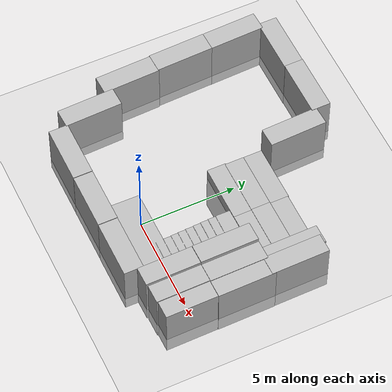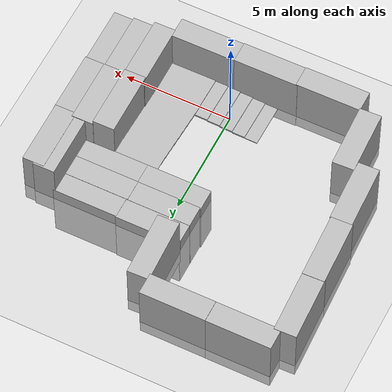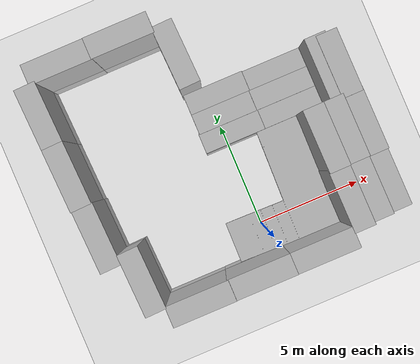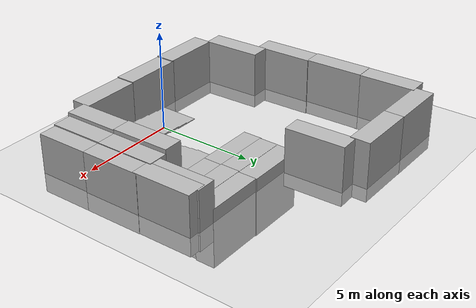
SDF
<sdf version="1.6">
 <world name="default">
  <light name="sun" type="directional">
   <pose>0 0 10 0 -0 0</pose>
   <diffuse>0.8 0.8 0.8 1</diffuse>
   <specular>0.2 0.2 0.2 1</specular>
   <attenuation>
    <range>1000</range>
    <constant>0.9</constant>
    <linear>0.01</linear>
    <quadratic>0.001</quadratic>
   </attenuation>
   <direction>-0.5 0.1 -0.9</direction>
  </light>
  <model name="ground_plane">
   <static>1</static>
   <link name="link">
    <collision name="collision">
     <geometry><plane><normal>0 0 1</normal><size>100 100</size></plane></geometry>
     <surface><friction><ode><mu>200</mu><mu2>100</mu2></ode></friction></surface>
    </collision>
    <visual name="visual">
     <cast_shadows>0</cast_shadows>
     <geometry><plane><normal>0 0 1</normal><size>100 100</size></plane></geometry>
     <material>
      <script><uri>file://media/materials/scripts/gazebo.material</uri><name>Gazebo/Grey</name></script>
     </material>
    </visual>
   </link>
  </model>
  <gravity>0 0 -9.8</gravity>
  <magnetic_field>6e-06 2.3e-05 -4.2e-05</magnetic_field>
  <atmosphere type="adiabatic"/>
  <physics name="default_physics" default="0" type="ode">
   <max_step_size>0.001</max_step_size>
   <real_time_factor>1</real_time_factor>
   <real_time_update_rate>1000</real_time_update_rate>
  </physics>
  <scene><ambient>0.4 0.4 0.4 1</ambient><background>0.7 0.7 0.7 1</background><shadows>1</shadows></scene>
  <spherical_coordinates>
   <surface_model>EARTH_WGS84</surface_model>
   <latitude_deg>0</latitude_deg>
   <longitude_deg>0</longitude_deg>
   <elevation>0</elevation>
   <heading_deg>0</heading_deg>
  </spherical_coordinates>
  <light name="user_directional_light_0" type="directional">
   <pose>2.12541 2.7382 1 0 -0 0</pose>
   <diffuse>0.5 0.5 0.5 1</diffuse>
   <specular>0.1 0.1 0.1 1</specular>
   <direction>0.1 0.1 -0.9</direction>
   <attenuation>
    <range>20</range>
    <constant>0.5</constant>
    <linear>0.01</linear>
    <quadratic>0.001</quadratic>
   </attenuation>
  </light>
  <light name="user_directional_light_1" type="directional">
   <pose>4.0333 2.55737 1 0 -0 0</pose>
   <diffuse>0.5 0.5 0.5 1</diffuse>
   <specular>0.1 0.1 0.1 1</specular>
   <direction>0.1 0.1 -0.9</direction>
   <attenuation>
    <range>20</range>
    <constant>0.5</constant>
    <linear>0.01</linear>
    <quadratic>0.001</quadratic>
   </attenuation>
  </light>
  <light name="user_directional_light_2" type="directional">
   <pose>5.69731 2.58598 1 0 -0 0</pose>
   <diffuse>0.5 0.5 0.5 1</diffuse>
   <specular>0.1 0.1 0.1 1</specular>
   <direction>0.1 0.1 -0.9</direction>
   <attenuation>
    <range>20</range>
    <constant>0.5</constant>
    <linear>0.01</linear>
    <quadratic>0.001</quadratic>
   </attenuation>
  </light>
  <model name="brick_box_3x1x3">
   <static>1</static>
   <link name="chassis">
    <pose>0 0 1.5 0 -0 0</pose>
    <collision name="collision"><geometry><box><size>3 1 3</size></box></geometry></collision>
    <visual name="visual">
     <geometry><mesh><uri>model://brick_box_3x1x3/meshes/simple_box.dae</uri><scale>3 1 3</scale></mesh></geometry>
     <material>
      <script>
       <uri>model://brick_box_3x1x3/materials/scripts</uri>
       <uri>model://brick_box_3x1x3/materials/textures</uri>
       <name>BrickBox/Diffuse</name>
      </script>
     </material>
    </visual>
   </link>
   <pose>2.00888 -1.91352 -0.775904 0 -0 0</pose>
  </model>
  <model name="brick_box_3x1x3_clone">
   <static>1</static>
   <link name="chassis">
    <pose>0 0 1.5 0 -0 0</pose>
    <collision name="collision"><geometry><box><size>3 1 3</size></box></geometry></collision>
    <visual name="visual">
     <geometry><mesh><uri>model://brick_box_3x1x3/meshes/simple_box.dae</uri><scale>3 1 3</scale></mesh></geometry>
     <material>
      <script>
       <uri>model://brick_box_3x1x3/materials/scripts</uri>
       <uri>model://brick_box_3x1x3/materials/textures</uri>
       <name>BrickBox/Diffuse</name>
      </script>
     </material>
    </visual>
   </link>
   <pose>-0.981088 -1.91253 -0.731804 0 -0 0</pose>
  </model>
  <model name="brick_box_3x1x3_clone_clone">
   <static>1</static>
   <link name="chassis">
    <pose>0 0 1.5 0 -0 0</pose>
    <collision name="collision"><geometry><box><size>3 1 3</size></box></geometry></collision>
    <visual name="visual">
     <geometry><mesh><uri>model://brick_box_3x1x3/meshes/simple_box.dae</uri><scale>3 1 3</scale></mesh></geometry>
     <material>
      <script>
       <uri>model://brick_box_3x1x3/materials/scripts</uri>
       <uri>model://brick_box_3x1x3/materials/textures</uri>
       <name>BrickBox/Diffuse</name>
      </script>
     </material>
    </visual>
   </link>
   <pose>3.37053 4.56885 -2.3589 0 -0 0</pose>
  </model>
  <model name="brick_box_3x1x3_clone_clone_clone">
   <static>1</static>
   <link name="chassis">
    <pose>0 0 1.5 0 -0 0</pose>
    <collision name="collision"><geometry><box><size>3 1 3</size></box></geometry></collision>
    <visual name="visual">
     <geometry><mesh><uri>model://brick_box_3x1x3/meshes/simple_box.dae</uri><scale>3 1 3</scale></mesh></geometry>
     <material>
      <script>
       <uri>model://brick_box_3x1x3/materials/scripts</uri>
       <uri>model://brick_box_3x1x3/materials/textures</uri>
       <name>BrickBox/Diffuse</name>
      </script>
     </material>
    </visual>
   </link>
   <pose>3.96684 2.58857 -0.719502 0 0 -1.56214</pose>
  </model>
  <model name="brick_box_3x1x3_clone_clone_clone_clone">
   <static>1</static>
   <link name="chassis">
    <pose>0 0 1.5 0 -0 0</pose>
    <collision name="collision"><geometry><box><size>3 1 3</size></box></geometry></collision>
    <visual name="visual">
     <geometry><mesh><uri>model://brick_box_3x1x3/meshes/simple_box.dae</uri><scale>3 1 3</scale></mesh></geometry>
     <material>
      <script>
       <uri>model://brick_box_3x1x3/materials/scripts</uri>
       <uri>model://brick_box_3x1x3/materials/textures</uri>
       <name>BrickBox/Diffuse</name>
      </script>
     </material>
    </visual>
   </link>
   <pose>3.97401 -0.239448 -0.773344 0 0 -1.56214</pose>
  </model>
  <model name="brick_box_3x1x3_clone_clone_clone_0">
   <static>1</static>
   <link name="chassis">
    <pose>0 0 1.5 0 -0 0</pose>
    <collision name="collision"><geometry><box><size>3 1 3</size></box></geometry></collision>
    <visual name="visual">
     <geometry><mesh><uri>model://brick_box_3x1x3/meshes/simple_box.dae</uri><scale>3 1 3</scale></mesh></geometry>
     <material>
      <script>
       <uri>model://brick_box_3x1x3/materials/scripts</uri>
       <uri>model://brick_box_3x1x3/materials/textures</uri>
       <name>BrickBox/Diffuse</name>
      </script>
     </material>
    </visual>
   </link>
   <pose>0.378678 4.56616 -2.35881 0 -0 0</pose>
  </model>
  <model name="brick_box_3x1x3_clone_clone_0">
   <static>1</static>
   <link name="chassis">
    <pose>0 0 1.5 0 -0 0</pose>
    <collision name="collision"><geometry><box><size>3 1 3</size></box></geometry></collision>
    <visual name="visual">
     <geometry><mesh><uri>model://brick_box_3x1x3/meshes/simple_box.dae</uri><scale>3 1 3</scale></mesh></geometry>
     <material>
      <script>
       <uri>model://brick_box_3x1x3/materials/scripts</uri>
       <uri>model://brick_box_3x1x3/materials/textures</uri>
       <name>BrickBox/Diffuse</name>
      </script>
     </material>
    </visual>
   </link>
   <pose>-5.9124 -0.025872 -0.6847 0 0 -1.5354</pose>
  </model>
  <model name="brick_box_3x1x3_clone_clone_1">
   <static>1</static>
   <link name="chassis">
    <pose>0 0 1.5 0 -0 0</pose>
    <collision name="collision"><geometry><box><size>3 1 3</size></box></geometry></collision>
    <visual name="visual">
     <geometry><mesh><uri>model://brick_box_3x1x3/meshes/simple_box.dae</uri><scale>3 1 3</scale></mesh></geometry>
     <material>
      <script>
       <uri>model://brick_box_3x1x3/materials/scripts</uri>
       <uri>model://brick_box_3x1x3/materials/textures</uri>
       <name>BrickBox/Diffuse</name>
      </script>
     </material>
    </visual>
   </link>
   <pose>-3.90727 -1.91701 -0.690231 0 -0 0</pose>
  </model>
  <model name="brick_box_3x1x3_clone_clone_0_clone">
   <static>1</static>
   <link name="chassis">
    <pose>0 0 1.5 0 -0 0</pose>
    <collision name="collision"><geometry><box><size>3 1 3</size></box></geometry></collision>
    <visual name="visual">
     <geometry><mesh><uri>model://brick_box_3x1x3/meshes/simple_box.dae</uri><scale>3 1 3</scale></mesh></geometry>
     <material>
      <script>
       <uri>model://brick_box_3x1x3/materials/scripts</uri>
       <uri>model://brick_box_3x1x3/materials/textures</uri>
       <name>BrickBox/Diffuse</name>
      </script>
     </material>
    </visual>
   </link>
   <pose>-6.98089 2.4859 -0.699066 0 0 -1.5354</pose>
  </model>
  <model name="brick_box_3x1x3_clone_clone_0_clone_clone">
   <static>1</static>
   <link name="chassis">
    <pose>0 0 1.5 0 -0 0</pose>
    <collision name="collision"><geometry><box><size>3 1 3</size></box></geometry></collision>
    <visual name="visual">
     <geometry><mesh><uri>model://brick_box_3x1x3/meshes/simple_box.dae</uri><scale>3 1 3</scale></mesh></geometry>
     <material>
      <script>
       <uri>model://brick_box_3x1x3/materials/scripts</uri>
       <uri>model://brick_box_3x1x3/materials/textures</uri>
       <name>BrickBox/Diffuse</name>
      </script>
     </material>
    </visual>
   </link>
   <pose>-7.13044 5.45078 -0.696087 0 0 -1.5354</pose>
  </model>
  <model name="brick_box_3x1x3_clone_clone_0_clone_clone_clone_clone">
   <static>1</static>
   <link name="chassis">
    <pose>0 0 1.5 0 -0 0</pose>
    <collision name="collision"><geometry><box><size>3 1 3</size></box></geometry></collision>
    <visual name="visual">
     <geometry><mesh><uri>model://brick_box_3x1x3/meshes/simple_box.dae</uri><scale>3 1 3</scale></mesh></geometry>
     <material>
      <script>
       <uri>model://brick_box_3x1x3/materials/scripts</uri>
       <uri>model://brick_box_3x1x3/materials/textures</uri>
       <name>BrickBox/Diffuse</name>
      </script>
     </material>
    </visual>
   </link>
   <pose>-0.674247 8.52531 -0.724481 0 0 -1.5354</pose>
  </model>
  <model name="brick_box_3x1x3_clone_clone_0_clone_clone_clone_0">
   <static>1</static>
   <link name="chassis">
    <pose>0 0 1.5 0 -0 0</pose>
    <collision name="collision"><geometry><box><size>3 1 3</size></box></geometry></collision>
    <visual name="visual">
     <geometry><mesh><uri>model://brick_box_3x1x3/meshes/simple_box.dae</uri><scale>3 1 3</scale></mesh></geometry>
     <material>
      <script>
       <uri>model://brick_box_3x1x3/materials/scripts</uri>
       <uri>model://brick_box_3x1x3/materials/textures</uri>
       <name>BrickBox/Diffuse</name>
      </script>
     </material>
    </visual>
   </link>
   <pose>-7.23383 8.32289 -0.709805 0 0 -1.5354</pose>
  </model>
  <model name="brick_box_3x1x3_clone_clone_0_clone_clone_clone_clone_clone">
   <static>1</static>
   <link name="chassis">
    <pose>0 0 1.5 0 -0 0</pose>
    <collision name="collision"><geometry><box><size>3 1 3</size></box></geometry></collision>
    <visual name="visual">
     <geometry><mesh><uri>model://brick_box_3x1x3/meshes/simple_box.dae</uri><scale>3 1 3</scale></mesh></geometry>
     <material>
      <script>
       <uri>model://brick_box_3x1x3/materials/scripts</uri>
       <uri>model://brick_box_3x1x3/materials/textures</uri>
       <name>BrickBox/Diffuse</name>
      </script>
     </material>
    </visual>
   </link>
   <pose>-2.64616 10.2447 -0.702574 0 0 -3.1393</pose>
  </model>
  <model name="brick_box_3x1x3_clone_clone_clone_clone_clone">
   <static>1</static>
   <link name="chassis">
    <pose>0 0 1.5 0 -0 0</pose>
    <collision name="collision"><geometry><box><size>3 1 3</size></box></geometry></collision>
    <visual name="visual">
     <geometry><mesh><uri>model://brick_box_3x1x3/meshes/simple_box.dae</uri><scale>3 1 3</scale></mesh></geometry>
     <material>
      <script>
       <uri>model://brick_box_3x1x3/materials/scripts</uri>
       <uri>model://brick_box_3x1x3/materials/textures</uri>
       <name>BrickBox/Diffuse</name>
      </script>
     </material>
    </visual>
   </link>
   <pose>4.9601 2.60469 -0.929253 0 0 -1.56214</pose>
  </model>
  <model name="brick_box_3x1x3_clone_clone_clone_clone_clone_clone_0">
   <static>1</static>
   <link name="chassis">
    <pose>0 0 1.5 0 -0 0</pose>
    <collision name="collision"><geometry><box><size>3 1 3</size></box></geometry></collision>
    <visual name="visual">
     <geometry><mesh><uri>model://brick_box_3x1x3/meshes/simple_box.dae</uri><scale>3 1 3</scale></mesh></geometry>
     <material>
      <script>
       <uri>model://brick_box_3x1x3/materials/scripts</uri>
       <uri>model://brick_box_3x1x3/materials/textures</uri>
       <name>BrickBox/Diffuse</name>
      </script>
     </material>
    </visual>
   </link>
   <pose>4.94281 -0.146793 -0.944283 0 0 -1.56214</pose>
  </model>
  <model name="brick_box_3x1x3_clone_clone_clone_clone_clone_clone_1">
   <static>1</static>
   <link name="chassis">
    <pose>0 0 1.5 0 -0 0</pose>
    <collision name="collision"><geometry><box><size>3 1 3</size></box></geometry></collision>
    <visual name="visual">
     <geometry><mesh><uri>model://brick_box_3x1x3/meshes/simple_box.dae</uri><scale>3 1 3</scale></mesh></geometry>
     <material>
      <script>
       <uri>model://brick_box_3x1x3/materials/scripts</uri>
       <uri>model://brick_box_3x1x3/materials/textures</uri>
       <name>BrickBox/Diffuse</name>
      </script>
     </material>
    </visual>
   </link>
   <pose>5.84808 -0.079475 -1.00037 0 0 -1.56214</pose>
  </model>
  <model name="brick_box_3x1x3_clone_clone_clone_clone_clone_clone_1_clone">
   <static>1</static>
   <link name="chassis">
    <pose>0 0 1.5 0 -0 0</pose>
    <collision name="collision"><geometry><box><size>3 1 3</size></box></geometry></collision>
    <visual name="visual">
     <geometry><mesh><uri>model://brick_box_3x1x3/meshes/simple_box.dae</uri><scale>3 1 3</scale></mesh></geometry>
     <material>
      <script>
       <uri>model://brick_box_3x1x3/materials/scripts</uri>
       <uri>model://brick_box_3x1x3/materials/textures</uri>
       <name>BrickBox/Diffuse</name>
      </script>
     </material>
    </visual>
   </link>
   <pose>5.86252 2.59895 -0.966197 0 0 -1.56214</pose>
  </model>
  <model name="brick_box_3x1x3_clone_clone_clone_clone_clone_clone_clone">
   <static>1</static>
   <link name="chassis">
    <pose>0 0 1.5 0 -0 0</pose>
    <collision name="collision"><geometry><box><size>3 1 3</size></box></geometry></collision>
    <visual name="visual">
     <geometry><mesh><uri>model://brick_box_3x1x3/meshes/simple_box.dae</uri><scale>3 1 3</scale></mesh></geometry>
     <material>
      <script>
       <uri>model://brick_box_3x1x3/materials/scripts</uri>
       <uri>model://brick_box_3x1x3/materials/textures</uri>
       <name>BrickBox/Diffuse</name>
      </script>
     </material>
    </visual>
   </link>
   <pose>5.30643 5.46676 -0.962178 0 0 -1.56214</pose>
  </model>
  <model name="brick_box_3x1x3_clone_clone_clone_1">
   <static>1</static>
   <link name="chassis">
    <pose>0 0 1.5 0 -0 0</pose>
    <collision name="collision"><geometry><box><size>3 1 3</size></box></geometry></collision>
    <visual name="visual">
     <geometry><mesh><uri>model://brick_box_3x1x3/meshes/simple_box.dae</uri><scale>3 1 3</scale></mesh></geometry>
     <material>
      <script>
       <uri>model://brick_box_3x1x3/materials/scripts</uri>
       <uri>model://brick_box_3x1x3/materials/textures</uri>
       <name>BrickBox/Diffuse</name>
      </script>
     </material>
    </visual>
   </link>
   <pose>3.35185 5.51253 -2.3475 0 -0 0</pose>
  </model>
  <model name="brick_box_3x1x3_clone_clone_clone_1_clone">
   <static>1</static>
   <link name="chassis">
    <pose>0 0 1.5 0 -0 0</pose>
    <collision name="collision"><geometry><box><size>3 1 3</size></box></geometry></collision>
    <visual name="visual">
     <geometry><mesh><uri>model://brick_box_3x1x3/meshes/simple_box.dae</uri><scale>3 1 3</scale></mesh></geometry>
     <material>
      <script>
       <uri>model://brick_box_3x1x3/materials/scripts</uri>
       <uri>model://brick_box_3x1x3/materials/textures</uri>
       <name>BrickBox/Diffuse</name>
      </script>
     </material>
    </visual>
   </link>
   <pose>0.42275 5.5145 -2.35549 0 -0 0</pose>
  </model>
  <model name="brick_box_3x1x3_clone_clone_clone_1_clone_0">
   <static>1</static>
   <link name="chassis">
    <pose>0 0 1.5 0 -0 0</pose>
    <collision name="collision"><geometry><box><size>3 1 3</size></box></geometry></collision>
    <visual name="visual">
     <geometry><mesh><uri>model://brick_box_3x1x3/meshes/simple_box.dae</uri><scale>3 1 3</scale></mesh></geometry>
     <material>
      <script>
       <uri>model://brick_box_3x1x3/materials/scripts</uri>
       <uri>model://brick_box_3x1x3/materials/textures</uri>
       <name>BrickBox/Diffuse</name>
      </script>
     </material>
    </visual>
   </link>
   <pose>3.40312 6.46423 -2.35641 0 -0 0</pose>
  </model>
  <model name="brick_box_3x1x3_clone_clone_clone_1_clone_0_clone">
   <static>1</static>
   <link name="chassis">
    <pose>0 0 1.5 0 -0 0</pose>
    <collision name="collision"><geometry><box><size>3 1 3</size></box></geometry></collision>
    <visual name="visual">
     <geometry><mesh><uri>model://brick_box_3x1x3/meshes/simple_box.dae</uri><scale>3 1 3</scale></mesh></geometry>
     <material>
      <script>
       <uri>model://brick_box_3x1x3/materials/scripts</uri>
       <uri>model://brick_box_3x1x3/materials/textures</uri>
       <name>BrickBox/Diffuse</name>
      </script>
     </material>
    </visual>
   </link>
   <pose>0.425515 6.50051 -2.36244 0 -0 0</pose>
  </model>
  <model name="brick_box_3x1x3_clone_clone_clone_clone_clone_clone_clone_clone">
   <static>1</static>
   <link name="chassis">
    <pose>0 0 1.5 0 -0 0</pose>
    <collision name="collision"><geometry><box><size>3 1 3</size></box></geometry></collision>
    <visual name="visual">
     <geometry><mesh><uri>model://brick_box_3x1x3/meshes/simple_box.dae</uri><scale>3 1 3</scale></mesh></geometry>
     <material>
      <script>
       <uri>model://brick_box_3x1x3/materials/scripts</uri>
       <uri>model://brick_box_3x1x3/materials/textures</uri>
       <name>BrickBox/Diffuse</name>
      </script>
     </material>
    </visual>
   </link>
   <pose>5.82581 5.39308 -0.957775 0 0 -1.56214</pose>
  </model>
  <model name="brick_box_3x1x3_clone_clone_0_clone_clone_clone_clone_clone_clone">
   <static>1</static>
   <link name="chassis">
    <pose>0 0 1.5 0 -0 0</pose>
    <collision name="collision"><geometry><box><size>3 1 3</size></box></geometry></collision>
    <visual name="visual">
     <geometry><mesh><uri>model://brick_box_3x1x3/meshes/simple_box.dae</uri><scale>3 1 3</scale></mesh></geometry>
     <material>
      <script>
       <uri>model://brick_box_3x1x3/materials/scripts</uri>
       <uri>model://brick_box_3x1x3/materials/textures</uri>
       <name>BrickBox/Diffuse</name>
      </script>
     </material>
    </visual>
   </link>
   <pose>-5.59058 10.2309 -0.725611 0 0 -3.1393</pose>
  </model>
  <audio><device>default</device></audio>
  <model name="stairs_v3">
   <static>1</static>
   <pose>-0.985967 1.29236 0 0 0 -1.58476</pose>
   <link name="link">
    <collision name="collision">
     <geometry><mesh><scale>1 1.5 0.2</scale><uri>model://stairs_v3/meshes/stairs_v3.dae</uri></mesh></geometry>
     <surface><friction><ode><mu>100</mu><mu2>50</mu2></ode></friction></surface>
    </collision>
    <visual name="visual">
     <geometry><mesh><scale>1 1.5 0.2</scale><uri>model://stairs_v3/meshes/stairs_v3.dae</uri></mesh></geometry>
    </visual>
   </link>
  </model>
 </world>
</sdf>
